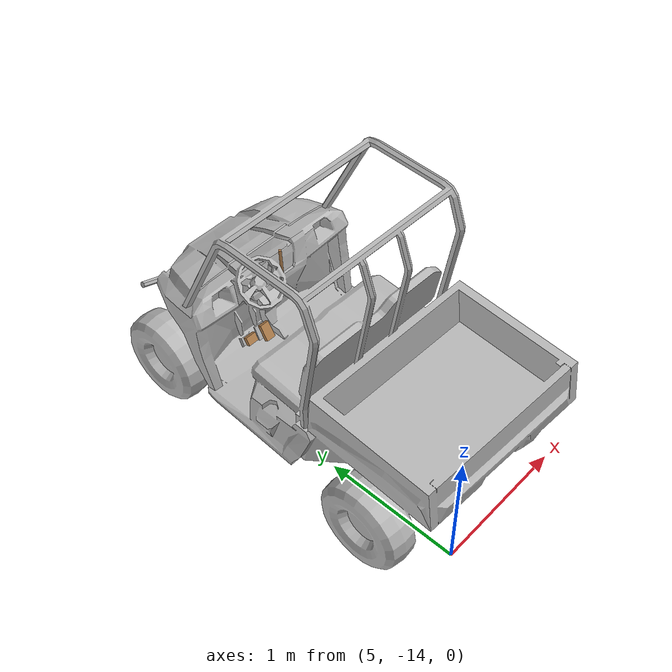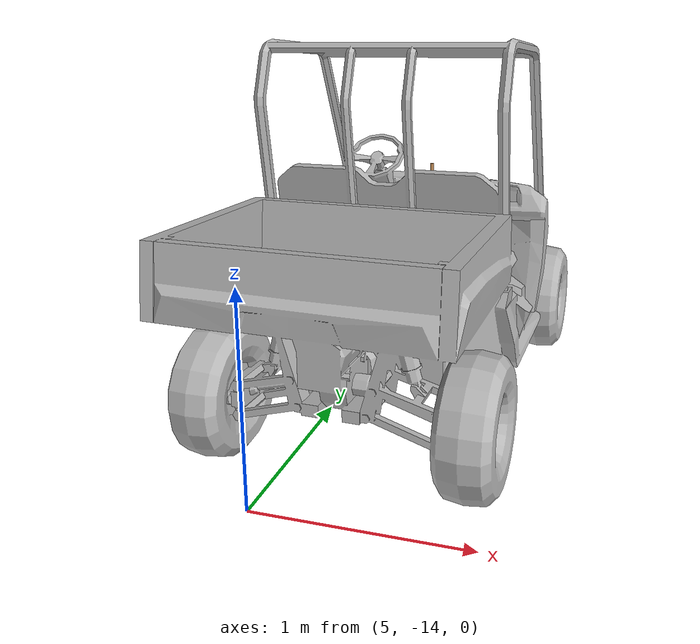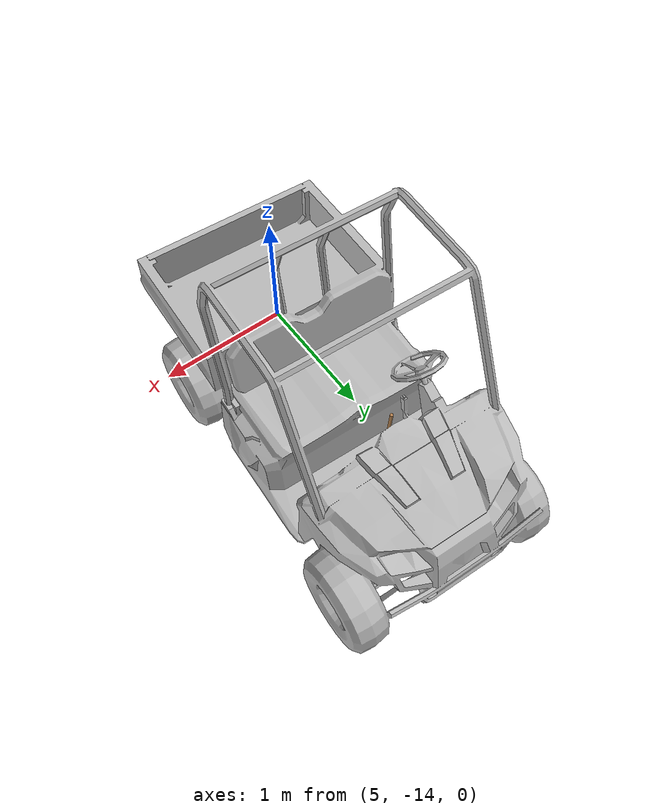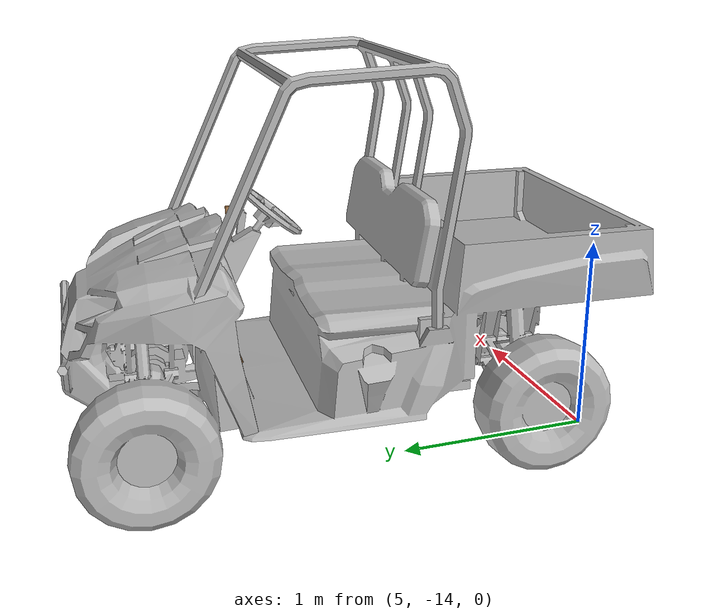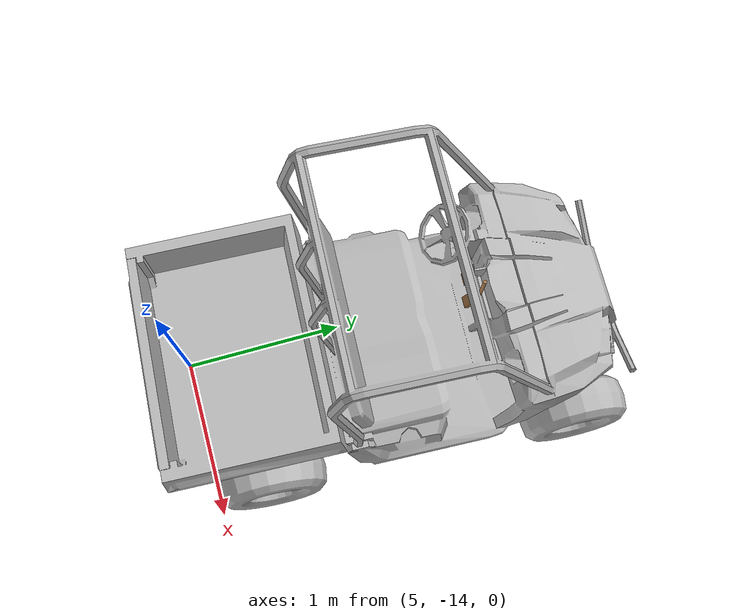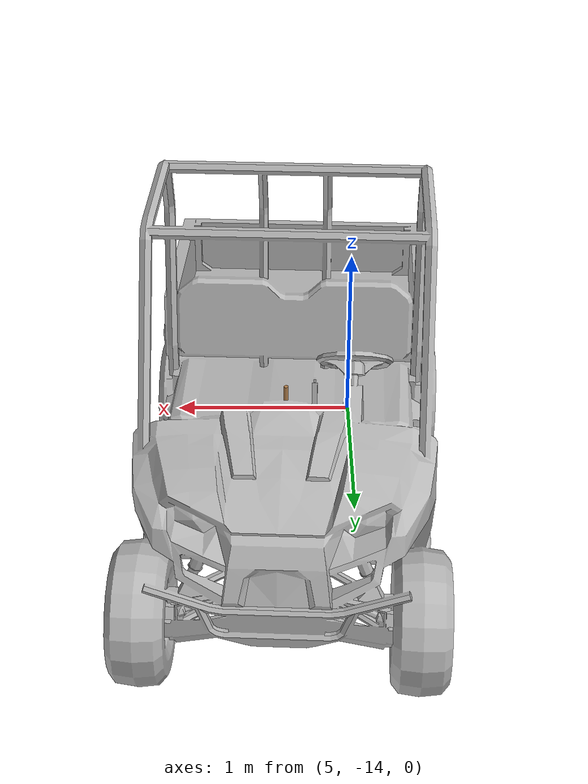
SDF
<sdf version="1.6">
 <world name="default">
  <model name="polaris_ranger_ev_clone_1_clone_clone_clone_clone_7">
   <static>true</static>
   <link name="chassis">
    <inertial>
     <mass>720</mass>
     <inertia><ixx>140</ixx><ixy>0</ixy><iyy>550</iyy><ixz>0</ixz><iyz>0</iyz><izz>550</izz></inertia>
    </inertial>
    <visual name="visual">
     <pose>0 0 0 0 0 -1.5708</pose>
     <geometry><mesh><uri>model://polaris_ranger_ev/meshes/polaris.dae</uri><scale>1 1 1</scale></mesh></geometry>
     <material>
      <script>
       <uri>model://polaris_ranger_ev/materials/scripts</uri>
       <uri>model://polaris_ranger_ev/materials/textures</uri>
       <name>Polaris/Diffuse</name>
      </script>
     </material>
    </visual>
    <collision name="chassis_bottom">
     <pose>0 0 0.35 0 -0 0</pose>
     <geometry><box><size>2 1 0.1</size></box></geometry>
    </collision>
    <collision name="cargo_bottom">
     <pose>-0.9 0 0.9 0 -0 0</pose>
     <geometry><box><size>0.9 1.2 0.01</size></box></geometry>
    </collision>
    <collision name="cargo_front">
     <pose>-0.45 0 1.025 0 -0 0</pose>
     <geometry><box><size>0.05 1.2 0.25</size></box></geometry>
    </collision>
    <collision name="cargo_back">
     <pose>-1.35 0 1.025 0 -0 0</pose>
     <geometry><box><size>0.05 1.2 0.25</size></box></geometry>
    </collision>
    <collision name="cargo_left">
     <pose>-0.9 0.6 1.025 0 -0 0</pose>
     <geometry><box><size>0.9 0.05 0.25</size></box></geometry>
    </collision>
    <collision name="cargo_right">
     <pose>-0.9 -0.6 1.025 0 -0 0</pose>
     <geometry><box><size>0.9 0.05 0.25</size></box></geometry>
    </collision>
    <collision name="seat">
     <pose>-0.1 0 0.625 0 -0 0</pose>
     <geometry><box><size>0.6 1 0.65</size></box></geometry>
    </collision>
    <collision name="seat_back">
     <pose>-0.3 0 1.125 0 -0.2 0</pose>
     <geometry><box><size>0.1 1 0.4</size></box></geometry>
    </collision>
    <collision name="engine">
     <pose>0.95 0 0.7 0 -0 0</pose>
     <geometry><box><size>0.58 1 0.8</size></box></geometry>
    </collision>
    <collision name="steering_column">
     <pose>0.525 0.3 1.025 0 -0.8 0</pose>
     <geometry><cylinder><radius>0.05</radius><length>0.45</length></cylinder></geometry>
    </collision>
   </link>
   <link name="rear_right_wheel">
    <pose>-0.85 -0.6 0.32 1.5708 -0 0</pose>
    <inertial>
     <mass>12</mass>
     <inertia><ixx>0.5</ixx><ixy>0</ixy><iyy>0.5</iyy><ixz>0</ixz><iyz>0</iyz><izz>1</izz></inertia>
    </inertial>
    <collision name="collision">
     <geometry><cylinder><radius>0.32</radius><length>0.23</length></cylinder></geometry>
     <surface>
      <friction><ode><mu>100000</mu><mu2>100000</mu2><slip1>0</slip1><slip2>0</slip2></ode></friction>
     </surface>
    </collision>
   </link>
   <joint name="rear_right_wheel_joint" type="revolute">
    <pose>0 0 -0.1 0 -0 0</pose>
    <child>rear_right_wheel</child>
    <parent>chassis</parent>
    <axis>
     <xyz>0 1 0</xyz>
     <use_parent_model_frame>1</use_parent_model_frame>
     <limit><lower>-1e+16</lower><upper>1e+16</upper></limit>
     <dynamics><spring_reference>0</spring_reference><spring_stiffness>0</spring_stiffness></dynamics>
    </axis>
    <physics><ode><limit><cfm>0</cfm><erp>0.9</erp></limit></ode></physics>
   </joint>
   <link name="rear_left_wheel">
    <pose>-0.85 0.6 0.32 1.5708 -0 0</pose>
    <inertial>
     <mass>12</mass>
     <inertia><ixx>0.5</ixx><ixy>0</ixy><iyy>0.5</iyy><ixz>0</ixz><iyz>0</iyz><izz>1</izz></inertia>
    </inertial>
    <collision name="collision">
     <geometry><cylinder><radius>0.32</radius><length>0.23</length></cylinder></geometry>
     <surface>
      <friction><ode><mu>100000</mu><mu2>100000</mu2><slip1>0</slip1><slip2>0</slip2></ode></friction>
     </surface>
    </collision>
   </link>
   <joint name="rear_left_wheel_joint" type="revolute">
    <child>rear_left_wheel</child>
    <parent>chassis</parent>
    <axis>
     <xyz>0 1 0</xyz>
     <use_parent_model_frame>1</use_parent_model_frame>
     <limit><lower>-1e+16</lower><upper>1e+16</upper></limit>
     <dynamics><spring_reference>0</spring_reference><spring_stiffness>0</spring_stiffness></dynamics>
    </axis>
    <physics><ode><limit><cfm>0</cfm><erp>0.9</erp></limit></ode></physics>
   </joint>
   <link name="front_right_wheel">
    <pose>1.03 -0.6 0.32 1.5708 -0 0</pose>
    <inertial>
     <mass>12</mass>
     <inertia><ixx>0.5</ixx><ixy>0</ixy><iyy>0.5</iyy><ixz>0</ixz><iyz>0</iyz><izz>1</izz></inertia>
    </inertial>
    <collision name="collision">
     <geometry><cylinder><radius>0.32</radius><length>0.23</length></cylinder></geometry>
     <surface>
      <friction><ode><mu>100000</mu><mu2>100000</mu2><slip1>0</slip1><slip2>0</slip2></ode></friction>
     </surface>
    </collision>
   </link>
   <link name="front_right_wheel_steering_block">
    <pose>1.03 -0.5 0.32 1.5708 -0 0</pose>
    <inertial>
     <mass>1</mass>
     <inertia><ixx>1</ixx><ixy>0</ixy><iyy>1</iyy><ixz>0</ixz><iyz>0</iyz><izz>1</izz></inertia>
    </inertial>
    <collision name="collision">
     <geometry><cylinder><radius>0.05</radius><length>0.01</length></cylinder></geometry>
    </collision>
   </link>
   <joint name="front_right_steering_joint" type="revolute">
    <child>front_right_wheel_steering_block</child>
    <parent>chassis</parent>
    <axis>
     <xyz>0 0 1</xyz>
     <limit><lower>-1</lower><upper>1</upper></limit>
     <use_parent_model_frame>1</use_parent_model_frame>
     <dynamics><spring_reference>0</spring_reference><spring_stiffness>0</spring_stiffness></dynamics>
    </axis>
    <physics><ode><limit><cfm>0</cfm><erp>0.9</erp></limit></ode></physics>
   </joint>
   <joint name="front_right_wheel_joint" type="revolute">
    <child>front_right_wheel</child>
    <parent>front_right_wheel_steering_block</parent>
    <axis>
     <xyz>0 1 0</xyz>
     <use_parent_model_frame>1</use_parent_model_frame>
     <limit><lower>-1e+16</lower><upper>1e+16</upper></limit>
     <dynamics><spring_reference>0</spring_reference><spring_stiffness>0</spring_stiffness></dynamics>
    </axis>
    <physics><ode><limit><cfm>0</cfm><erp>0.9</erp></limit></ode></physics>
   </joint>
   <link name="front_left_wheel">
    <pose>1.03 0.6 0.32 1.5708 -0 0</pose>
    <inertial>
     <mass>12</mass>
     <inertia><ixx>0.5</ixx><ixy>0</ixy><iyy>0.5</iyy><ixz>0</ixz><iyz>0</iyz><izz>1</izz></inertia>
    </inertial>
    <collision name="collision">
     <geometry><cylinder><radius>0.32</radius><length>0.23</length></cylinder></geometry>
     <surface>
      <friction><ode><mu>100000</mu><mu2>100000</mu2><slip1>0</slip1><slip2>0</slip2></ode></friction>
     </surface>
    </collision>
   </link>
   <link name="front_left_wheel_steering_block">
    <pose>1.03 0.5 0.32 1.5708 -0 0</pose>
    <inertial>
     <mass>1</mass>
     <inertia><ixx>1</ixx><ixy>0</ixy><iyy>1</iyy><ixz>0</ixz><iyz>0</iyz><izz>1</izz></inertia>
    </inertial>
    <collision name="collision">
     <geometry><cylinder><radius>0.05</radius><length>0.01</length></cylinder></geometry>
    </collision>
   </link>
   <joint name="front_left_steering_joint" type="revolute">
    <child>front_left_wheel_steering_block</child>
    <parent>chassis</parent>
    <axis>
     <xyz>0 0 1</xyz>
     <limit><lower>-1</lower><upper>1</upper></limit>
     <use_parent_model_frame>1</use_parent_model_frame>
     <dynamics><spring_reference>0</spring_reference><spring_stiffness>0</spring_stiffness></dynamics>
    </axis>
    <physics><ode><limit><cfm>0</cfm><erp>0.9</erp></limit></ode></physics>
   </joint>
   <joint name="front_left_wheel_joint" type="revolute">
    <child>front_left_wheel</child>
    <parent>front_left_wheel_steering_block</parent>
    <axis>
     <xyz>0 1 0</xyz>
     <use_parent_model_frame>1</use_parent_model_frame>
     <limit><lower>-1e+16</lower><upper>1e+16</upper></limit>
     <dynamics><spring_reference>0</spring_reference><spring_stiffness>0</spring_stiffness></dynamics>
    </axis>
    <physics><ode><limit><cfm>0</cfm><erp>0.9</erp></limit></ode></physics>
   </joint>
   <link name="gas_pedal">
    <pose>0.53 0.14 0.56 0 -1 0</pose>
    <gravity>0</gravity>
    <inertial>
     <mass>0.1</mass>
     <inertia><ixx>0.01</ixx><ixy>0</ixy><ixz>0</ixz><iyy>0.01</iyy><iyz>0</iyz><izz>0.01</izz></inertia>
    </inertial>
    <collision name="gas_pedal_collision"><geometry><box><size>0.12 0.07 0.03</size></box></geometry></collision>
    <visual name="gas_pedal_visual">
     <geometry><box><size>0.12 0.07 0.03</size></box></geometry>
     <material>
      <script><uri>file://media/materials/scripts/gazebo.material</uri><name>Gazebo/Wood</name></script>
      <ambient>0.2 0.2 0.2 1</ambient>
      <diffuse>0.2 0.2 0.2 1</diffuse>
      <specular>0.2 0.2 0.2 1</specular>
      <emissive>0.5 0.5 0.5 1</emissive>
     </material>
    </visual>
   </link>
   <link name="brake_pedal">
    <gravity>0</gravity>
    <pose>0.54 0.27 0.58 0 -1 0</pose>
    <inertial>
     <mass>0.1</mass>
     <inertia><ixx>0.01</ixx><ixy>0</ixy><ixz>0</ixz><iyy>0.01</iyy><iyz>0</iyz><izz>0.01</izz></inertia>
    </inertial>
    <collision name="brake_pedal_collision">
     <geometry><box><size>0.06 0.08 0.03</size></box></geometry>
    </collision>
    <visual name="brake_pedal_visual">
     <geometry><box><size>0.06 0.08 0.03</size></box></geometry>
     <material>
      <script><uri>file://media/materials/scripts/gazebo.material</uri><name>Gazebo/Wood</name></script>
      <ambient>0.2 0.2 0.2 1</ambient>
      <diffuse>0.2 0.2 0.2 1</diffuse>
      <specular>0.2 0.2 0.2 1</specular>
      <emissive>0.5 0.5 0.5 1</emissive>
     </material>
    </visual>
   </link>
   <link name="steering_wheel">
    <pose>0.37 0.3 1.2 0 -0.8 0</pose>
    <inertial>
     <mass>1</mass>
     <inertia><ixx>0.1</ixx><ixy>0</ixy><ixz>0</ixz><iyy>0.1</iyy><iyz>0</iyz><izz>1</izz></inertia>
    </inertial>
    <collision name="steering_wheel_post_left">
     <pose>0 0.08 0 1.5708 -0 0</pose>
     <geometry><cylinder><radius>0.02</radius><length>0.15</length></cylinder></geometry>
    </collision>
    <collision name="steering_wheel_post_right">
     <pose>0 -0.08 0 1.5708 -0 0</pose>
     <geometry><cylinder><radius>0.02</radius><length>0.15</length></cylinder></geometry>
    </collision>
    <collision name="steering_wheel_post_middle">
     <pose>-0.08 0 0 3.14159 1.57079 3.14159</pose>
     <geometry><cylinder><radius>0.02</radius><length>0.15</length></cylinder></geometry>
    </collision>
    <collision name="collision00">
     <pose>0.15 0 0 3.14159 1.57079 -1.57079</pose>
     <geometry><cylinder><length>0.105066</length><radius>0.01</radius></cylinder></geometry>
    </collision>
    <collision name="collision01">
     <pose>0.121353 0.088168 0 3.14159 1.57079 -0.942483</pose>
     <geometry><cylinder><length>0.105066</length><radius>0.01</radius></cylinder></geometry>
    </collision>
    <collision name="collision02">
     <pose>0.046353 0.142658 0 3.14159 1.57079 -0.314163</pose>
     <geometry><cylinder><length>0.105066</length><radius>0.01</radius></cylinder></geometry>
    </collision>
    <collision name="collision03">
     <pose>-0.046353 0.142658 0 3.14159 1.57079 0.314163</pose>
     <geometry><cylinder><length>0.105066</length><radius>0.01</radius></cylinder></geometry>
    </collision>
    <collision name="collision04">
     <pose>-0.121353 0.088168 0 -3.14159 1.57079 0.942483</pose>
     <geometry><cylinder><length>0.105066</length><radius>0.01</radius></cylinder></geometry>
    </collision>
    <collision name="collision05">
     <pose>-0.15 0 0 -3.14159 1.57079 1.57079</pose>
     <geometry><cylinder><length>0.105066</length><radius>0.01</radius></cylinder></geometry>
    </collision>
    <collision name="collision06">
     <pose>-0.121353 -0.088168 0 3.14159 1.57079 2.19912</pose>
     <geometry><cylinder><length>0.105066</length><radius>0.01</radius></cylinder></geometry>
    </collision>
    <collision name="collision07">
     <pose>-0.046353 -0.142658 0 -3.14159 1.57079 2.82743</pose>
     <geometry><cylinder><length>0.105066</length><radius>0.01</radius></cylinder></geometry>
    </collision>
    <collision name="collision08">
     <pose>0.046353 -0.142658 0 3.14159 1.57079 -2.82743</pose>
     <geometry><cylinder><length>0.105066</length><radius>0.01</radius></cylinder></geometry>
    </collision>
    <collision name="collision09">
     <pose>0.121353 -0.088168 0 -3.14159 1.57079 -2.19911</pose>
     <geometry><cylinder><length>0.105066</length><radius>0.01</radius></cylinder></geometry>
    </collision>
   </link>
   <link name="hand_brake">
    <pose>0.5 0 1.05 3.14159 -0.058407 3.14159</pose>
    <inertial>
     <mass>1</mass>
     <pose>0 0 -0.15 0 -0 0</pose>
     <inertia><ixx>0.1</ixx><ixy>0</ixy><ixz>0</ixz><iyy>0.1</iyy><iyz>0</iyz><izz>1</izz></inertia>
    </inertial>
    <collision name="hand_brake_collision">
     <pose>0 0 -0.1 0 -0 0</pose>
     <geometry><cylinder><radius>0.01</radius><length>0.2</length></cylinder></geometry>
    </collision>
    <visual name="hand_brake_visual">
     <pose>0 0 -0.1 0 -0 0</pose>
     <geometry><cylinder><radius>0.01</radius><length>0.2</length></cylinder></geometry>
     <material>
      <script><uri>file://media/materials/scripts/gazebo.material</uri><name>Gazebo/Wood</name></script>
     </material>
    </visual>
   </link>
   <joint name="gas_joint" type="prismatic">
    <parent>chassis</parent>
    <child>gas_pedal</child>
    <axis>
     <xyz>1 0 -1</xyz>
     <limit><lower>0</lower><upper>0.15</upper></limit>
     <use_parent_model_frame>1</use_parent_model_frame>
     <dynamics><spring_reference>0</spring_reference><spring_stiffness>0</spring_stiffness></dynamics>
    </axis>
   </joint>
   <joint name="brake_joint" type="prismatic">
    <parent>chassis</parent>
    <child>brake_pedal</child>
    <axis>
     <xyz>1 0 -0.6</xyz>
     <limit><lower>0</lower><upper>0.15</upper></limit>
     <use_parent_model_frame>1</use_parent_model_frame>
     <dynamics><spring_reference>0</spring_reference><spring_stiffness>0</spring_stiffness></dynamics>
    </axis>
   </joint>
   <joint name="steering_joint" type="revolute">
    <pose>0 0 0 1.5708 -0.8 0</pose>
    <parent>chassis</parent>
    <child>steering_wheel</child>
    <axis>
     <xyz>-1 0 1.023</xyz>
     <limit><lower>-7.853</lower><upper>7.853</upper></limit>
     <use_parent_model_frame>1</use_parent_model_frame>
     <dynamics><spring_reference>0</spring_reference><spring_stiffness>0</spring_stiffness></dynamics>
    </axis>
   </joint>
   <joint name="hand_brake_joint" type="revolute">
    <parent>chassis</parent>
    <child>hand_brake</child>
    <axis>
     <xyz>0 -1 0</xyz>
     <limit><lower>0</lower><upper>0.6</upper></limit>
     <use_parent_model_frame>1</use_parent_model_frame>
     <dynamics><spring_reference>0</spring_reference><spring_stiffness>0</spring_stiffness></dynamics>
    </axis>
   </joint>
   <pose>5.34045 -12.7252 -5.2e-05 0 4.8e-05 1.52106</pose>
  </model>
 </world>
</sdf>
